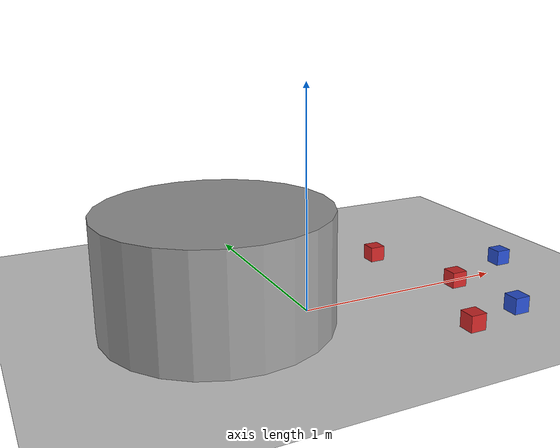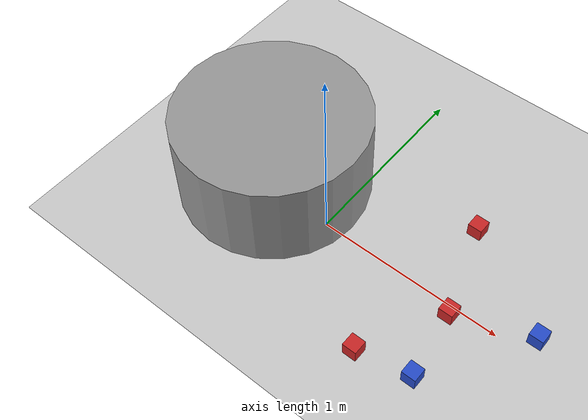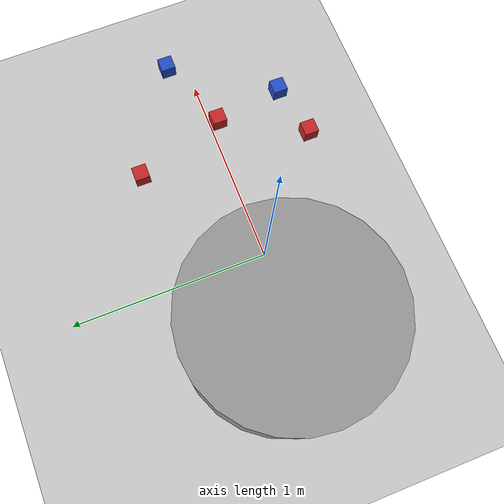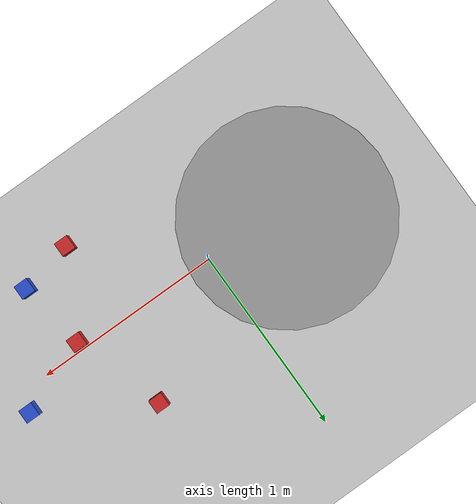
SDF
<sdf version="1.6">
 <world name="default">
  <light name="sun" type="directional">
   <pose>0 0 10 0 -0 0</pose>
   <diffuse>0.8 0.8 0.8 1</diffuse>
   <specular>0.1 0.1 0.1 1</specular>
   <attenuation>
    <range>1000</range>
    <constant>0.9</constant>
    <linear>0.01</linear>
    <quadratic>0.001</quadratic>
   </attenuation>
   <direction>-0.5 0.5 -1</direction>
  </light>
  <model name="ground_plane">
   <static>1</static>
   <link name="link">
    <collision name="collision">
     <geometry><plane><normal>0 0 1</normal><size>100 100</size></plane></geometry>
     <surface><friction><ode><mu>100</mu><mu2>50</mu2></ode></friction></surface>
    </collision>
    <visual name="visual">
     <cast_shadows>0</cast_shadows>
     <geometry><plane><normal>0 0 1</normal><size>100 100</size></plane></geometry>
     <material>
      <script><uri>file://media/materials/scripts/gazebo.material</uri><name>Gazebo/Grey</name></script>
     </material>
    </visual>
   </link>
  </model>
  <gravity>0 0 -9.8</gravity>
  <magnetic_field>6e-06 2.3e-05 -4.2e-05</magnetic_field>
  <atmosphere type="adiabatic"/>
  <physics name="default_physics" default="0" type="ode">
   <max_step_size>0.001</max_step_size>
   <real_time_factor>1</real_time_factor>
   <real_time_update_rate>1000</real_time_update_rate>
  </physics>
  <scene><ambient>1 1 1 1</ambient><background>1 1 1 1</background><shadows>0</shadows></scene>
  <spherical_coordinates>
   <surface_model>EARTH_WGS84</surface_model>
   <latitude_deg>0</latitude_deg>
   <longitude_deg>0</longitude_deg>
   <elevation>0</elevation>
   <heading_deg>0</heading_deg>
  </spherical_coordinates>
  <model name="half_cylinder">
   <link name="link">
    <inertial>
     <mass>1</mass>
     <inertia><ixx>0.145833</ixx><ixy>0</ixy><ixz>0</ixz><iyy>0.145833</iyy><iyz>0</iyz><izz>0.125</izz></inertia>
    </inertial>
    <visual name="visual">
     <geometry><cylinder><radius>0.5</radius><length>0.5</length></cylinder></geometry>
     <material>
      <script><name>Gazebo/Grey</name><uri>file://media/materials/scripts/gazebo.material</uri></script>
      <ambient>0.3 0.3 0.3 1</ambient>
      <diffuse>0.7 0.7 0.7 1</diffuse>
      <specular>0.01 0.01 0.01 1</specular>
      <emissive>0 0 0 1</emissive>
      <shader type="vertex"><normal_map>__default__</normal_map></shader>
     </material>
    </visual>
    <collision name="collision">
     <geometry><cylinder><radius>0.5</radius><length>0.5</length></cylinder></geometry>
     <surface>
      <friction>
       <ode><mu>1</mu><mu2>1</mu2><fdir1>0 0 0</fdir1><slip1>0</slip1><slip2>0</slip2></ode>
       <torsional>
        <coefficient>1</coefficient>
        <patch_radius>0</patch_radius>
        <surface_radius>0</surface_radius>
        <use_patch_radius>1</use_patch_radius>
        <ode><slip>0</slip></ode>
       </torsional>
      </friction>
      <bounce><restitution_coefficient>0</restitution_coefficient><threshold>1e+06</threshold></bounce>
      <contact>
       <collide_without_contact>0</collide_without_contact>
       <collide_without_contact_bitmask>1</collide_without_contact_bitmask>
       <collide_bitmask>1</collide_bitmask>
       <ode>
        <soft_cfm>0</soft_cfm>
        <soft_erp>0.2</soft_erp>
        <kp>1e+13</kp>
        <kd>1</kd>
        <max_vel>0.01</max_vel>
        <min_depth>0</min_depth>
       </ode>
       <bullet>
        <split_impulse>1</split_impulse>
        <split_impulse_penetration_threshold>-0.01</split_impulse_penetration_threshold>
        <soft_cfm>0</soft_cfm>
        <soft_erp>0.2</soft_erp>
        <kp>1e+13</kp>
        <kd>1</kd>
       </bullet>
      </contact>
     </surface>
    </collision>
   </link>
   <static>0</static>
   <pose>-0.386977 0.063938 0.249994 0 1e-06 0.001255</pose>
  </model>
  <model name="cube_20k_blue_1">
   <link name="link">
    <pose>0 0 0.5 0 -0 0</pose>
    <inertial>
     <inertia><ixx>1</ixx><ixy>0</ixy><ixz>0</ixz><iyy>1</iyy><iyz>0</iyz><izz>1</izz></inertia>
     <mass>1</mass>
    </inertial>
    <visual name="visual">
     <geometry><box><size>0.075 0.075 0.075</size></box></geometry>
     <material>
      <shader type="vertex"><normal_map>__default__</normal_map></shader>
      <ambient>0 0 1 1</ambient>
      <diffuse>0 0 1 1</diffuse>
      <specular>0.1 0.1 0.1 1</specular>
      <emissive>0 0 0 1</emissive>
      <script><name>Gazebo/Blue</name><uri>__default__</uri></script>
     </material>
    </visual>
    <collision name="collision">
     <geometry><box><size>0.075 0.075 0.075</size></box></geometry>
     <surface>
      <friction>
       <ode><mu>1</mu><mu2>1</mu2><fdir1>0 0 0</fdir1><slip1>0</slip1><slip2>0</slip2></ode>
       <torsional>
        <coefficient>1</coefficient>
        <patch_radius>0</patch_radius>
        <surface_radius>0</surface_radius>
        <use_patch_radius>1</use_patch_radius>
        <ode><slip>0</slip></ode>
       </torsional>
      </friction>
      <bounce><restitution_coefficient>0</restitution_coefficient><threshold>1e+06</threshold></bounce>
      <contact>
       <collide_without_contact>0</collide_without_contact>
       <collide_without_contact_bitmask>1</collide_without_contact_bitmask>
       <collide_bitmask>1</collide_bitmask>
       <ode>
        <soft_cfm>0</soft_cfm>
        <soft_erp>0.2</soft_erp>
        <kp>1e+13</kp>
        <kd>1</kd>
        <max_vel>0.01</max_vel>
        <min_depth>0</min_depth>
       </ode>
       <bullet>
        <split_impulse>1</split_impulse>
        <split_impulse_penetration_threshold>-0.01</split_impulse_penetration_threshold>
        <soft_cfm>0</soft_cfm>
        <soft_erp>0.2</soft_erp>
        <kp>1e+13</kp>
        <kd>1</kd>
       </bullet>
      </contact>
     </surface>
    </collision>
   </link>
   <static>0</static>
   <pose>1.15912 0.099096 -0.4625 -1e-06 -0 -0.000108</pose>
  </model>
  <model name="cube_20k_blue_2">
   <link name="link">
    <pose>0 0 0.5 0 -0 0</pose>
    <inertial>
     <inertia><ixx>1</ixx><ixy>0</ixy><ixz>0</ixz><iyy>1</iyy><iyz>0</iyz><izz>1</izz></inertia>
     <mass>1</mass>
    </inertial>
    <visual name="visual">
     <geometry><box><size>0.075 0.075 0.075</size></box></geometry>
     <material>
      <shader type="vertex"><normal_map>__default__</normal_map></shader>
      <ambient>0 0 1 1</ambient>
      <diffuse>0 0 1 1</diffuse>
      <specular>0.1 0.1 0.1 1</specular>
      <emissive>0 0 0 1</emissive>
      <script><name>Gazebo/Blue</name><uri>__default__</uri></script>
     </material>
    </visual>
    <collision name="collision">
     <geometry><box><size>0.075 0.075 0.075</size></box></geometry>
     <surface>
      <friction>
       <ode><mu>1</mu><mu2>1</mu2><fdir1>0 0 0</fdir1><slip1>0</slip1><slip2>0</slip2></ode>
       <torsional>
        <coefficient>1</coefficient>
        <patch_radius>0</patch_radius>
        <surface_radius>0</surface_radius>
        <use_patch_radius>1</use_patch_radius>
        <ode><slip>0</slip></ode>
       </torsional>
      </friction>
      <bounce><restitution_coefficient>0</restitution_coefficient><threshold>1e+06</threshold></bounce>
      <contact>
       <collide_without_contact>0</collide_without_contact>
       <collide_without_contact_bitmask>1</collide_without_contact_bitmask>
       <collide_bitmask>1</collide_bitmask>
       <ode>
        <soft_cfm>0</soft_cfm>
        <soft_erp>0.2</soft_erp>
        <kp>1e+13</kp>
        <kd>1</kd>
        <max_vel>0.01</max_vel>
        <min_depth>0</min_depth>
       </ode>
       <bullet>
        <split_impulse>1</split_impulse>
        <split_impulse_penetration_threshold>-0.01</split_impulse_penetration_threshold>
        <soft_cfm>0</soft_cfm>
        <soft_erp>0.2</soft_erp>
        <kp>1e+13</kp>
        <kd>1</kd>
       </bullet>
      </contact>
     </surface>
    </collision>
   </link>
   <static>0</static>
   <pose>0.822319 -0.41032 -0.462498 -1e-06 4.5e-05 -0.000105</pose>
  </model>
  <model name="cube_20k_red_1">
   <link name="link">
    <pose>0 0 0.5 0 -0 0</pose>
    <inertial>
     <inertia><ixx>1</ixx><ixy>0</ixy><ixz>0</ixz><iyy>1</iyy><iyz>0</iyz><izz>1</izz></inertia>
     <mass>1</mass>
    </inertial>
    <visual name="visual">
     <geometry><box><size>0.075 0.075 0.075</size></box></geometry>
     <material>
      <shader type="vertex"><normal_map>__default__</normal_map></shader>
      <ambient>1 0 0 1</ambient>
      <diffuse>1 0 0 1</diffuse>
      <specular>0.1 0.1 0.1 1</specular>
      <emissive>0 0 0 1</emissive>
      <script><name>Gazebo/Red</name><uri>__default__</uri></script>
     </material>
    </visual>
    <collision name="collision">
     <geometry><box><size>0.075 0.075 0.075</size></box></geometry>
     <surface>
      <friction>
       <ode><mu>1</mu><mu2>1</mu2><fdir1>0 0 0</fdir1><slip1>0</slip1><slip2>0</slip2></ode>
       <torsional>
        <coefficient>1</coefficient>
        <patch_radius>0</patch_radius>
        <surface_radius>0</surface_radius>
        <use_patch_radius>1</use_patch_radius>
        <ode><slip>0</slip></ode>
       </torsional>
      </friction>
      <bounce><restitution_coefficient>0</restitution_coefficient><threshold>1e+06</threshold></bounce>
      <contact>
       <collide_without_contact>0</collide_without_contact>
       <collide_without_contact_bitmask>1</collide_without_contact_bitmask>
       <collide_bitmask>1</collide_bitmask>
       <ode>
        <soft_cfm>0</soft_cfm>
        <soft_erp>0.2</soft_erp>
        <kp>1e+13</kp>
        <kd>1</kd>
        <max_vel>0.01</max_vel>
        <min_depth>0</min_depth>
       </ode>
       <bullet>
        <split_impulse>1</split_impulse>
        <split_impulse_penetration_threshold>-0.01</split_impulse_penetration_threshold>
        <soft_cfm>0</soft_cfm>
        <soft_erp>0.2</soft_erp>
        <kp>1e+13</kp>
        <kd>1</kd>
       </bullet>
      </contact>
     </surface>
    </collision>
   </link>
   <static>0</static>
   <pose>0.767956 -0.046599 -0.462499 -1.1e-05 -3e-06 -0.000107</pose>
  </model>
  <model name="cube_20k_red_3">
   <link name="link">
    <pose>0 0 0.5 0 -0 0</pose>
    <inertial>
     <inertia><ixx>1</ixx><ixy>0</ixy><ixz>0</ixz><iyy>1</iyy><iyz>0</iyz><izz>1</izz></inertia>
     <mass>1</mass>
    </inertial>
    <visual name="visual">
     <geometry><box><size>0.075 0.075 0.075</size></box></geometry>
     <material>
      <shader type="vertex"><normal_map>__default__</normal_map></shader>
      <ambient>1 0 0 1</ambient>
      <diffuse>1 0 0 1</diffuse>
      <specular>0.1 0.1 0.1 1</specular>
      <emissive>0 0 0 1</emissive>
      <script><name>Gazebo/Red</name><uri>__default__</uri></script>
     </material>
    </visual>
    <collision name="collision">
     <geometry><box><size>0.075 0.075 0.075</size></box></geometry>
     <surface>
      <friction>
       <ode><mu>1</mu><mu2>1</mu2><fdir1>0 0 0</fdir1><slip1>0</slip1><slip2>0</slip2></ode>
       <torsional>
        <coefficient>1</coefficient>
        <patch_radius>0</patch_radius>
        <surface_radius>0</surface_radius>
        <use_patch_radius>1</use_patch_radius>
        <ode><slip>0</slip></ode>
       </torsional>
      </friction>
      <bounce><restitution_coefficient>0</restitution_coefficient><threshold>1e+06</threshold></bounce>
      <contact>
       <collide_without_contact>0</collide_without_contact>
       <collide_without_contact_bitmask>1</collide_without_contact_bitmask>
       <collide_bitmask>1</collide_bitmask>
       <ode>
        <soft_cfm>0</soft_cfm>
        <soft_erp>0.2</soft_erp>
        <kp>1e+13</kp>
        <kd>1</kd>
        <max_vel>0.01</max_vel>
        <min_depth>0</min_depth>
       </ode>
       <bullet>
        <split_impulse>1</split_impulse>
        <split_impulse_penetration_threshold>-0.01</split_impulse_penetration_threshold>
        <soft_cfm>0</soft_cfm>
        <soft_erp>0.2</soft_erp>
        <kp>1e+13</kp>
        <kd>1</kd>
       </bullet>
      </contact>
     </surface>
    </collision>
   </link>
   <static>0</static>
   <pose>0.612595 0.433263 -0.4625 3e-06 -1e-06 -0.000107</pose>
  </model>
  <model name="cube_20k_red_4">
   <link name="link">
    <pose>0 0 0.5 0 -0 0</pose>
    <inertial>
     <inertia><ixx>1</ixx><ixy>0</ixy><ixz>0</ixz><iyy>1</iyy><iyz>0</iyz><izz>1</izz></inertia>
     <mass>1</mass>
    </inertial>
    <visual name="visual">
     <geometry><box><size>0.075 0.075 0.075</size></box></geometry>
     <material>
      <shader type="vertex"><normal_map>__default__</normal_map></shader>
      <ambient>1 0 0 1</ambient>
      <diffuse>1 0 0 1</diffuse>
      <specular>0.1 0.1 0.1 1</specular>
      <emissive>0 0 0 1</emissive>
      <script><name>Gazebo/Red</name><uri>__default__</uri></script>
     </material>
    </visual>
    <collision name="collision">
     <geometry><box><size>0.075 0.075 0.075</size></box></geometry>
     <surface>
      <friction>
       <ode><mu>1</mu><mu2>1</mu2><fdir1>0 0 0</fdir1><slip1>0</slip1><slip2>0</slip2></ode>
       <torsional>
        <coefficient>1</coefficient>
        <patch_radius>0</patch_radius>
        <surface_radius>0</surface_radius>
        <use_patch_radius>1</use_patch_radius>
        <ode><slip>0</slip></ode>
       </torsional>
      </friction>
      <bounce><restitution_coefficient>0</restitution_coefficient><threshold>1e+06</threshold></bounce>
      <contact>
       <collide_without_contact>0</collide_without_contact>
       <collide_without_contact_bitmask>1</collide_without_contact_bitmask>
       <collide_bitmask>1</collide_bitmask>
       <ode>
        <soft_cfm>0</soft_cfm>
        <soft_erp>0.2</soft_erp>
        <kp>1e+13</kp>
        <kd>1</kd>
        <max_vel>0.01</max_vel>
        <min_depth>0</min_depth>
       </ode>
       <bullet>
        <split_impulse>1</split_impulse>
        <split_impulse_penetration_threshold>-0.01</split_impulse_penetration_threshold>
        <soft_cfm>0</soft_cfm>
        <soft_erp>0.2</soft_erp>
        <kp>1e+13</kp>
        <kd>1</kd>
       </bullet>
      </contact>
     </surface>
    </collision>
   </link>
   <static>0</static>
   <pose>0.538394 -0.466897 -0.4625 -5e-06 -0 -0.000106</pose>
  </model>
 </world>
</sdf>
